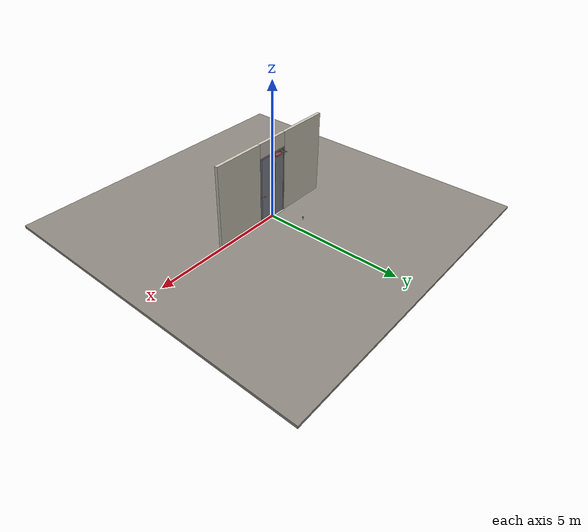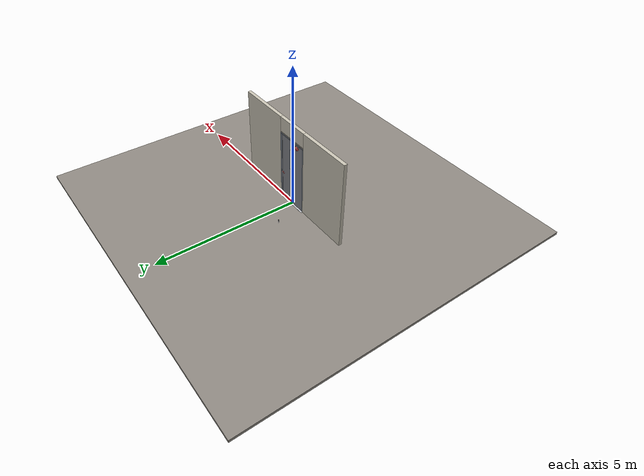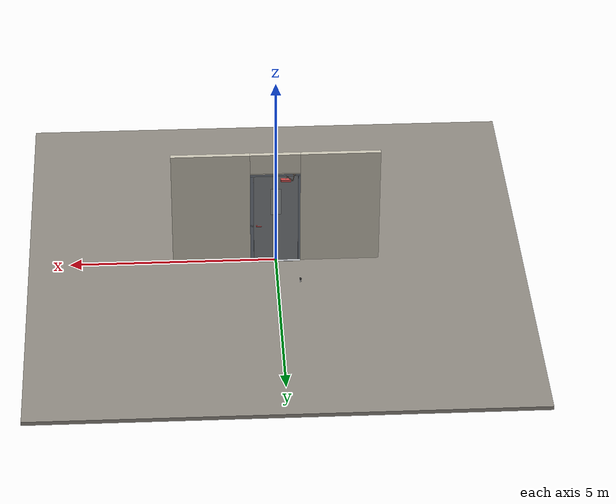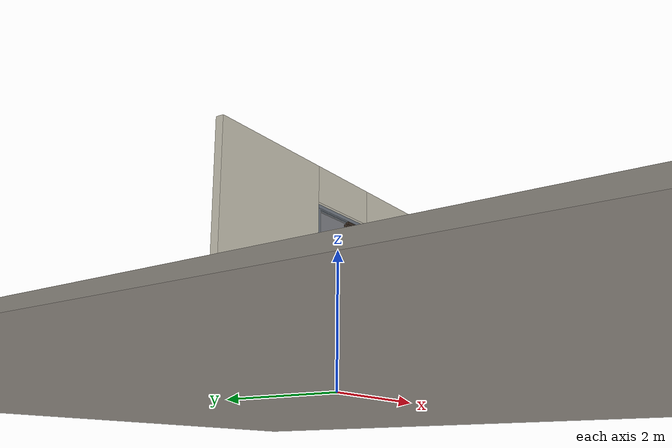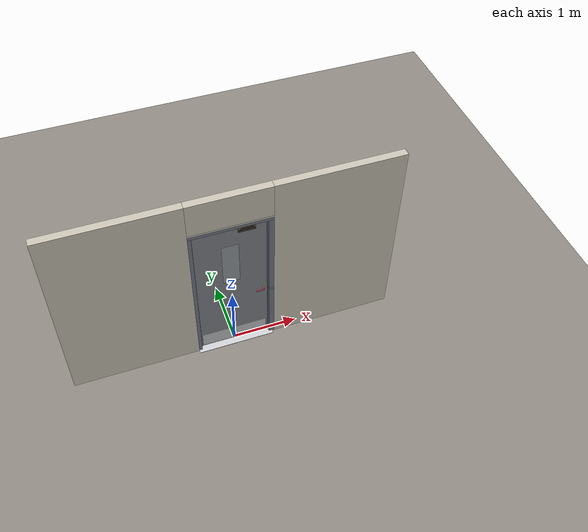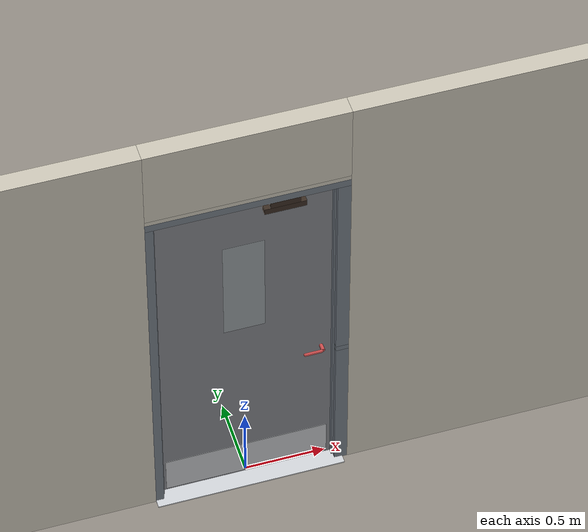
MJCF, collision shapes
<?xml version="1.0" ?>
<mujoco model="db0021_swing_single_full">
  <compiler angle="radian" meshdir="../../hardware" texturedir="../../textures" autolimits="true" inertiafromgeom="false"/>
  <option timestep="0.002" integrator="implicitfast" cone="elliptic" impratio="10" noslip_iterations="3">
    <flag multiccd="enable"/>
  </option>
  <size memory="16M"/>
  <default>
    <geom condim="4" solref="0.005 1" solimp="0.95 0.99 0.001"/>
    <joint solreflimit="0.005 1" solimplimit="0.95 0.99 0.001"/>
    <tendon solreflimit="0.005 1"/>
    <equality solref="0.002 1"/>
  </default>
  <visual>
    <headlight ambient="0.4 0.4 0.4" diffuse="0.7 0.7 0.7" specular="0.2 0.2 0.2"/>
    <quality shadowsize="4096"/>
    <map znear="0.01" zfar="60"/>
  </visual>
  <asset>
    <mesh name="closer_body_b226fdb10b" file="closer_body_b226fdb10b.obj"/>
    <mesh name="hinge_e22b26c0c1" file="hinge_e22b26c0c1.obj"/>
    <mesh name="hinge_jamb_e1d088f8dc" file="hinge_jamb_e1d088f8dc.obj"/>
    <mesh name="lever_6268dcb28c" file="lever_6268dcb28c.obj"/>
    <material name="mat_floor" rgba="0.55 0.53 0.5 1" specular="0.2" shininess="0.15" reflectance="0"/>
    <material name="mat_wall" rgba="0.78 0.76 0.7 1" specular="0.2" shininess="0.1" reflectance="0"/>
    <material name="mat_leaf" rgba="0.5 0.51 0.53 1" specular="0.2" shininess="0.61" reflectance="0"/>
    <material name="mat_glass" rgba="0.8 0.85 0.85 0.35" specular="0.2" shininess="0.9" reflectance="0.1"/>
    <material name="mat_hinge" rgba="0.65 0.66 0.68 1" specular="0.74" shininess="0.5" reflectance="0.36"/>
    <material name="mat_op_stainless" rgba="0.75 0.76 0.77 1" specular="0.8" shininess="0.65" reflectance="0.4"/>
    <material name="mat_trim" rgba="0.85 0.66 0.3 1" specular="0.8" shininess="0.75" reflectance="0.4"/>
    <material name="mat_bolt" rgba="0.85 0.66 0.3 1" specular="0.8" shininess="0.75" reflectance="0.4"/>
    <material name="mat_maglock" rgba="0.22 0.17 0.13 1" specular="0.8" shininess="0.6" reflectance="0.4"/>
    <material name="mat_frame" rgba="0.45 0.48 0.52 1" specular="0.32" shininess="0.6" reflectance="0.08"/>
    <material name="mat_seal" rgba="0.1 0.1 0.1 1" specular="0.2" shininess="0.1" reflectance="0"/>
    <material name="mat_threshold" rgba="0.8 0.81 0.83 1" specular="0.8" shininess="0.6" reflectance="0.4"/>
    <material name="mat_closer" rgba="0.22 0.17 0.13 1" specular="0.8" shininess="0.6" reflectance="0.4"/>
    <material name="mat_kick" rgba="0.75 0.76 0.77 1" specular="0.8" shininess="0.65" reflectance="0.4"/>
    <material name="mat_bumper_stop" rgba="0.08 0.08 0.08 1" specular="0.2" shininess="0.1" reflectance="0"/>
    <material name="mat_stop_base" rgba="0.9 0.9 0.92 1" specular="0.8" shininess="0.9" reflectance="0.4"/>
    <texture name="skybox" type="skybox" builtin="gradient" rgb1="0.6 0.7 0.85" rgb2="0.9 0.92 0.95" width="256" height="256"/>
  </asset>
  <worldbody>
    <light name="sun" pos="1.5 -2.5 4" dir="-0.3 0.5 -0.8" directional="true" diffuse="0.8 0.8 0.8" specular="0.3 0.3 0.3" castshadow="true"/>
    <light name="fill" pos="-1.5 2.5 3" dir="0.3 -0.5 -0.7" directional="true" diffuse="0.35 0.35 0.4" castshadow="false"/>
    <camera name="robot_view" pos="0 -2.951313 2.043887" xyaxes="1 0 0 0 0.26963 0.962964" fovy="52"/>
    <camera name="far_view" pos="0 2.894312 2.043887" xyaxes="-1 0 0 0 -0.26963 0.962964" fovy="52"/>
    <camera name="iso" pos="2.221337 -2.483663 2.511538" xyaxes="0.741536 0.670913 0 -0.242917 0.268487 0.932151" fovy="46"/>
    <camera name="detail_handle" pos="0.547 -0.877 1.32" xyaxes="0.97561 0.219512 0 -0.070934 0.315262 0.94635" fovy="38"/>
    <geom name="floor" type="box" size="6 6 0.05" pos="0 0 -0.05" material="mat_floor" group="0" contype="1" conaffinity="1" friction="0.8 0.005 0.0001" density="2400"/>
    <geom name="wall_left" type="box" size="0.9565 0.0575 1.5255" pos="-1.5435 -0.0285 1.5255" material="mat_wall" group="0" contype="1" conaffinity="1" friction="0.6 0.005 0.0001" density="800"/>
    <geom name="wall_right" type="box" size="0.9415 0.0575 1.5255" pos="1.5585 -0.0285 1.5255" material="mat_wall" group="0" contype="1" conaffinity="1" friction="0.6 0.005 0.0001" density="800"/>
    <geom name="wall_header" type="box" size="0.602 0.0575 0.26" pos="0.015 -0.0285 2.791" material="mat_wall" group="0" contype="1" conaffinity="1" friction="0.6 0.005 0.0001" density="800"/>
    <geom name="hinge_0_jamb" type="mesh" mesh="hinge_jamb_e1d088f8dc" pos="-0.534 0.029 0.259" quat="0 1 0 0" material="mat_hinge" group="1" contype="0" conaffinity="0" density="7850"/>
    <geom name="hinge_1_jamb" type="mesh" mesh="hinge_jamb_e1d088f8dc" pos="-0.534 0.029 0.928333" quat="0 1 0 0" material="mat_hinge" group="1" contype="0" conaffinity="0" density="7850"/>
    <geom name="hinge_2_jamb" type="mesh" mesh="hinge_jamb_e1d088f8dc" pos="-0.534 0.029 1.597667" quat="0 1 0 0" material="mat_hinge" group="1" contype="0" conaffinity="0" density="7850"/>
    <geom name="hinge_3_jamb" type="mesh" mesh="hinge_jamb_e1d088f8dc" pos="-0.534 0.029 2.267" quat="0 1 0 0" material="mat_hinge" group="1" contype="0" conaffinity="0" density="7850"/>
    <geom name="leaf_maglock_body" type="box" size="0.125 0.025 0.02" pos="0.233 -0.057 2.386" material="mat_maglock" group="0" contype="1" conaffinity="1" friction="0.6 0.005 0.0001" density="2000"/>
    <geom name="leaf_maglock_bracket" type="box" size="0.09 0.025 0.0225" pos="0.233 -0.057 2.4285" material="mat_maglock" group="1" contype="0" conaffinity="0" density="7850"/>
    <geom name="jamb_hinge" type="box" size="0.025 0.0575 1.2255" pos="-0.562 -0.0285 1.2255" material="mat_frame" group="0" contype="1" conaffinity="1" friction="0.6 0.005 0.0001" density="300"/>
    <geom name="strike_1040_wall_n" type="box" size="0.04 0.03825 0.0183" pos="0.577 -0.04775 1.04" material="mat_frame" group="0" contype="1" conaffinity="1" friction="0.6 0.005 0.0001" density="300"/>
    <geom name="strike_1040_wall_p" type="box" size="0.04 0.008 0.0183" pos="0.577 0.0175 1.04" material="mat_frame" group="0" contype="1" conaffinity="1" friction="0.6 0.005 0.0001" density="300"/>
    <geom name="strike_1040_ramp" type="box" size="0.04 0.018028 0.0183" pos="0.580282 0.018312 1.04" quat="0.957092 0 0 -0.289784" material="mat_frame" group="0" contype="1" conaffinity="1" friction="0.12 0.005 0.0001" density="300"/>
    <geom name="strike_1040_back" type="box" size="0.0285 0.0095 0.0183" pos="0.5885 0 1.04" material="mat_frame" group="0" contype="1" conaffinity="1" friction="0.6 0.005 0.0001" density="300"/>
    <geom name="jamb_strike_0" type="box" size="0.04 0.0575 0.51085" pos="0.577 -0.0285 0.51085" material="mat_frame" group="0" contype="1" conaffinity="1" friction="0.6 0.005 0.0001" density="300"/>
    <geom name="jamb_strike_1" type="box" size="0.04 0.0575 0.69635" pos="0.577 -0.0285 1.75465" material="mat_frame" group="0" contype="1" conaffinity="1" friction="0.6 0.005 0.0001" density="300"/>
    <geom name="jamb_head" type="box" size="0.602 0.0575 0.025" pos="0.015 -0.0285 2.476" material="mat_frame" group="0" contype="1" conaffinity="1" friction="0.6 0.005 0.0001" density="300"/>
    <geom name="head_stud" type="box" size="0.602 0.0575 0.015" pos="0.015 -0.0285 2.516" material="mat_wall" group="0" contype="1" conaffinity="1" friction="0.6 0.005 0.0001" density="500"/>
    <geom name="stop_hinge" type="box" size="0.0055 0.016 1.2255" pos="-0.5315 -0.0385 1.2255" material="mat_frame" group="0" contype="1" conaffinity="1" friction="0.6 0.005 0.0001" density="300"/>
    <geom name="stop_strike" type="box" size="0.0055 0.016 1.2255" pos="0.5315 -0.0385 1.2255" material="mat_frame" group="0" contype="1" conaffinity="1" friction="0.6 0.005 0.0001" density="300"/>
    <geom name="stop_head" type="box" size="0.537 0.016 0.0055" pos="0 -0.0385 2.4455" material="mat_frame" group="0" contype="1" conaffinity="1" friction="0.6 0.005 0.0001" density="300"/>
    <geom name="seal_hinge" type="box" size="0.004 0.002 1.2255" pos="-0.534 -0.024 1.2255" material="mat_seal" group="1" contype="0" conaffinity="0" density="1100"/>
    <geom name="seal_strike" type="box" size="0.004 0.002 1.2255" pos="0.534 -0.024 1.2255" material="mat_seal" group="1" contype="0" conaffinity="0" density="1100"/>
    <geom name="seal_head" type="box" size="0.517 0.002 0.008" pos="0 -0.024 2.439" material="mat_seal" group="1" contype="0" conaffinity="0" density="1100"/>
    <geom name="threshold" type="box" size="0.587 0.1075 0.004" pos="0 -0.0285 0.004" material="mat_threshold" group="0" contype="1" conaffinity="1" friction="0.6 0.005 0.0001" density="2700"/>
    <geom name="closer_bracket" type="box" size="0.03 0.012 0.014" pos="-0.437 0.041 2.481" material="mat_closer" group="1" contype="0" conaffinity="0" density="2700"/>
    <geom name="door_stop_base" type="cylinder" size="0.022 0.003" pos="-0.55 0.93595 0.003" material="mat_stop_base" group="0" contype="1" conaffinity="1" friction="0.6 0.005 0.0001" density="7850"/>
    <geom name="door_stop_post" type="cylinder" size="0.012 0.0245" pos="-0.55 0.93595 0.0305" material="mat_stop_base" group="0" contype="1" conaffinity="1" friction="0.6 0.005 0.0001" density="7850"/>
    <geom name="door_stop_bumper" type="cylinder" size="0.022 0.02" pos="-0.55 0.93595 0.075" material="mat_bumper_stop" group="0" contype="1" conaffinity="1" friction="0.6 0.005 0.0001" density="1100"/>
    <site name="approach_point" pos="0 -1.5 0" quat="1 0 0 0" size="0.05" rgba="0.2 0.9 0.2 0.5" group="4"/>
    <site name="goal_point" pos="0 1.5 0" quat="1 0 0 0" size="0.05" rgba="0.2 0.9 0.2 0.5" group="4"/>
    <site name="door_plane_center" pos="0 0 1.2255" quat="1 0 0 0" size="0.02" rgba="0.2 0.9 0.2 0.5" group="4"/>
    <body name="leaf" pos="-0.537 0 0">
      <inertial pos="0.500481 0.006784 1.328314" mass="58.887042" quat="-0.479169 0.494041 0.512753 0.51323" diaginertia="5.320521798 37.08953994 42.348434582"/>
      <joint name="leaf_hinge" type="hinge" axis="0 0 1" pos="0.003 0.029 0" limited="true" range="0 1.570796" solreflimit="0.02 1" damping="10.570702" frictionloss="2.926248" stiffness="13.852846" springref="-2.233476" armature="0.02"/>
      <geom name="leaf_slab" type="box" size="0.5335 0.022 1.219" pos="0.5365 0 1.228" material="mat_leaf" group="0" contype="1" conaffinity="1" friction="0.4 0.005 0.0001" density="1"/>
      <geom name="leaf_glass_0" type="box" size="0.125 0.0228 0.3657" pos="0.5365 0 1.7156" material="mat_glass" group="1" contype="0" conaffinity="0" density="1"/>
      <geom name="hinge_0" type="mesh" mesh="hinge_e22b26c0c1" pos="0.003 0.029 0.259" quat="0 1 0 0" material="mat_hinge" group="1" contype="0" conaffinity="0" density="7850"/>
      <geom name="hinge_1" type="mesh" mesh="hinge_e22b26c0c1" pos="0.003 0.029 0.928333" quat="0 1 0 0" material="mat_hinge" group="1" contype="0" conaffinity="0" density="7850"/>
      <geom name="hinge_2" type="mesh" mesh="hinge_e22b26c0c1" pos="0.003 0.029 1.597667" quat="0 1 0 0" material="mat_hinge" group="1" contype="0" conaffinity="0" density="7850"/>
      <geom name="hinge_3" type="mesh" mesh="hinge_e22b26c0c1" pos="0.003 0.029 2.267" quat="0 1 0 0" material="mat_hinge" group="1" contype="0" conaffinity="0" density="7850"/>
      <geom name="leaf_latch_bolt_faceplate" type="box" size="0.0006 0.014 0.0283" pos="1.0694 0 1.04" material="mat_bolt" group="1" contype="0" conaffinity="0" density="8500"/>
      <geom name="leaf_maglock_armature" type="box" size="0.09 0.005 0.02" pos="0.77 -0.027 2.386" material="mat_maglock" group="1" contype="0" conaffinity="0" density="7800"/>
      <geom name="closer_body" type="mesh" mesh="closer_body_b226fdb10b" pos="0.3 0.022 2.358" quat="-0.707107 0.707107 0 0" material="mat_closer" group="1" contype="0" conaffinity="0" density="2000"/>
      <geom name="closer_body_col" type="box" size="0.12 0.04 0.03" pos="0.3 0.062 2.358" material="mat_closer" group="3" contype="1" conaffinity="1" rgba="0.8 0.3 0.3 0.25" friction="0.6 0.005 0.0001" density="2000"/>
      <geom name="closer_pinion_shaft" type="cylinder" size="0.008 0.0615" pos="0.3 0.064 2.4195" material="mat_closer" group="1" contype="0" conaffinity="0" density="2700"/>
      <geom name="kick_plate_n" type="box" size="0.5035 0.0008 0.125" pos="0.5365 -0.0228 0.144" material="mat_kick" group="2" contype="0" conaffinity="0" density="7900"/>
      <site name="leaf_edge_mid" pos="1.07 0 1.219" quat="1 0 0 0" size="0.02" rgba="0.2 0.9 0.2 0.5" group="4"/>
      <body name="leaf_handle" pos="1 0 1.04">
        <inertial pos="-0.035149 0 0" mass="1.038236" quat="0 0.707107 0.707107 0" diaginertia="0.002348364 0.00382535 0.005606687"/>
        <joint name="leaf_handle_hinge" type="hinge" axis="0 -1 0" limited="true" range="0 0.96" damping="0.255791" frictionloss="0.05" stiffness="1.2" springref="-0.583333" armature="0.01"/>
        <geom name="leaf_handle_spindle" type="cylinder" size="0.006 0.03" pos="0 0 0" quat="0.707107 -0.707107 0 0" material="mat_op_stainless" group="1" contype="0" conaffinity="0" density="7850"/>
        <geom name="leaf_handle_lever_n" type="mesh" mesh="lever_6268dcb28c" pos="0 -0.022 0" quat="0.707107 0.707107 0 0" material="mat_op_stainless" group="1" contype="0" conaffinity="0" density="3000"/>
        <geom name="leaf_handle_lever_col_n" type="capsule" size="0.0095 0.0505" pos="-0.06 -0.077 0" quat="0.707107 0 -0.707107 0" material="mat_op_stainless" group="3" contype="1" conaffinity="1" rgba="0.8 0.3 0.3 0.25" friction="0.7 0.01 0.0001" density="3000"/>
        <geom name="leaf_handle_hub_col_n" type="cylinder" size="0.012 0.022" pos="0 -0.052 0" quat="0.707107 -0.707107 0 0" material="mat_op_stainless" group="3" contype="1" conaffinity="1" rgba="0.8 0.3 0.3 0.25" friction="0.6 0.005 0.0001" density="3000"/>
        <geom name="leaf_handle_lever_p" type="mesh" mesh="lever_6268dcb28c" pos="0 0.022 0" quat="-0.707107 0.707107 0 0" material="mat_op_stainless" group="1" contype="0" conaffinity="0" density="3000"/>
        <geom name="leaf_handle_lever_col_p" type="capsule" size="0.0095 0.0505" pos="-0.06 0.077 0" quat="0.707107 0 -0.707107 0" material="mat_op_stainless" group="3" contype="1" conaffinity="1" rgba="0.8 0.3 0.3 0.25" friction="0.7 0.01 0.0001" density="3000"/>
        <geom name="leaf_handle_hub_col_p" type="cylinder" size="0.012 0.022" pos="0 0.052 0" quat="0.707107 -0.707107 0 0" material="mat_op_stainless" group="3" contype="1" conaffinity="1" rgba="0.8 0.3 0.3 0.25" friction="0.6 0.005 0.0001" density="3000"/>
        <site name="leaf_handle_grip_n" pos="-0.096 -0.077 0" quat="1 0 0 0" size="0.012" rgba="0.2 0.9 0.2 0.5" group="4"/>
        <site name="leaf_handle_grip_p" pos="-0.096 0.077 0" quat="1 0 0 0" size="0.012" rgba="0.2 0.9 0.2 0.5" group="4"/>
      </body>
      <body name="leaf_latch_bolt" pos="1.07 0 1.04">
        <inertial pos="-0.0055 0 0" mass="0.074627" quat="0.92388 -0.382683 0 0" diaginertia="0.000002271 0.000013255 0.000013255"/>
        <joint name="leaf_latch_bolt_slide" type="slide" axis="-1 0 0" limited="true" range="0 0.019" damping="2" frictionloss="0.3" stiffness="600" springref="-0.01" armature="0.1"/>
        <geom name="leaf_latch_bolt_capsule" type="capsule" size="0.008 0.0165" pos="-0.0055 0 0" quat="0.707107 0 0.707107 0" material="mat_bolt" group="0" contype="1" conaffinity="1" friction="0.2 0.005 0.0001" density="8500"/>
      </body>
      <body name="closer_arm_main" pos="0.3 0.064 2.481" quat="0.472212 0 0 0.881485">
        <inertial pos="0.14 0 0" mass="0.12096" quat="1 0 0 0" diaginertia="0.000003588 0.00079128 0.000792852"/>
        <joint name="closer_pinion" type="hinge" axis="0 0 1" limited="false" damping="0.01" armature="0.002"/>
        <geom name="closer_arm_main_geom" type="box" size="0.14 0.008 0.005" pos="0.14 0 0" material="mat_closer" group="1" contype="0" conaffinity="0" density="2700"/>
        <body name="closer_arm_fore" pos="0.28 0 0" quat="-0.371222 0 0 -0.928544">
          <inertial pos="0.128088 0 0" mass="0.076531" quat="1 0 0 0" diaginertia="0.000001771 0.000437665 0.000438201"/>
          <joint name="closer_elbow" type="hinge" axis="0 0 1" limited="false" damping="0.01" armature="0.002"/>
          <geom name="closer_arm_fore_geom" type="box" size="0.1125 0.007 0.004" pos="0.1125 0 0" material="mat_closer" group="1" contype="0" conaffinity="0" density="2700"/>
          <geom name="closer_fore_neck" type="box" size="0.0175 0.003 0.003" pos="0.2425 0 0" material="mat_closer" group="1" contype="0" conaffinity="0" density="2700"/>
          <geom name="closer_fore_pivot" type="cylinder" size="0.005 0.012" pos="0.26 0 0" material="mat_closer" group="1" contype="0" conaffinity="0" density="2700"/>
        </body>
      </body>
    </body>
  </worldbody>
  <tendon>
    <fixed name="leaf_latch_bolt_coupling" limited="true" range="0 10">
      <joint joint="leaf_latch_bolt_slide" coef="1"/>
      <joint joint="leaf_handle_hinge" coef="-0.020879"/>
    </fixed>
  </tendon>
  <equality>
    <weld name="leaf_maglock" body1="leaf" body2="world" active="true"/>
    <connect name="closer_arm_connect" body1="closer_arm_fore" body2="world" anchor="0.26 0 0" active="true"/>
  </equality>
  <contact>
    <exclude body1="closer_arm_main" body2="leaf"/>
    <exclude body1="closer_arm_fore" body2="leaf"/>
    <exclude body1="closer_arm_main" body2="closer_arm_fore"/>
  </contact>
  <sensor>
    <jointpos name="leaf_hinge_pos" joint="leaf_hinge"/>
    <jointvel name="leaf_hinge_vel" joint="leaf_hinge"/>
    <jointpos name="leaf_handle_hinge_pos" joint="leaf_handle_hinge"/>
    <jointvel name="leaf_handle_hinge_vel" joint="leaf_handle_hinge"/>
    <jointpos name="leaf_latch_bolt_slide_pos" joint="leaf_latch_bolt_slide"/>
    <jointvel name="leaf_latch_bolt_slide_vel" joint="leaf_latch_bolt_slide"/>
  </sensor>
</mujoco>
